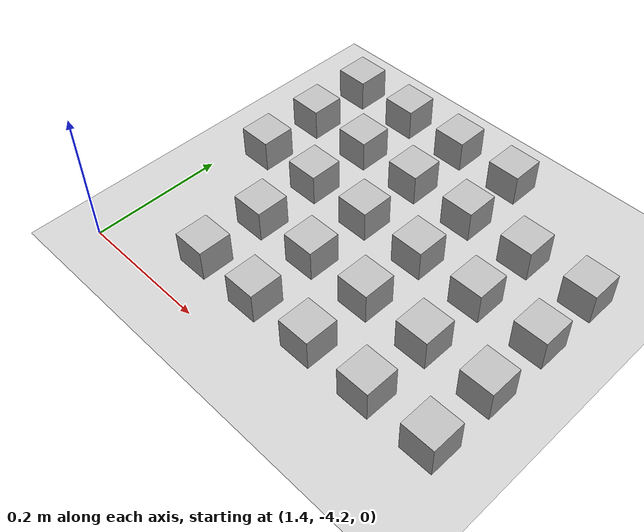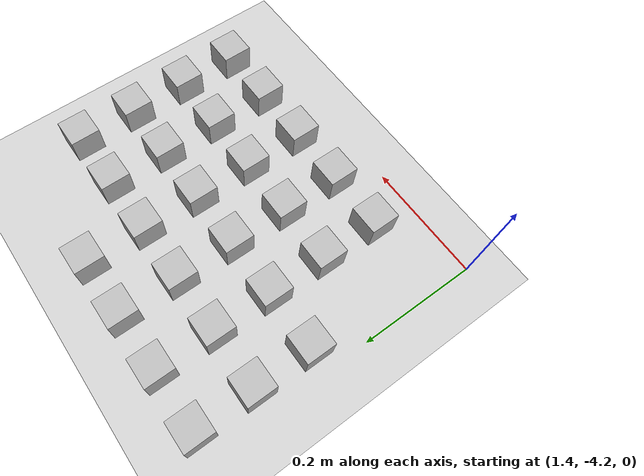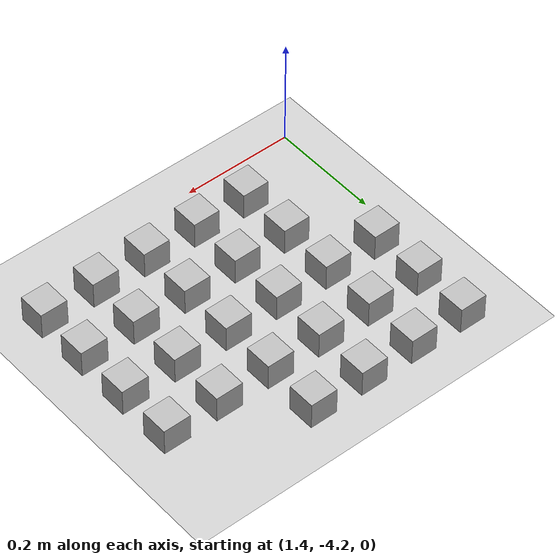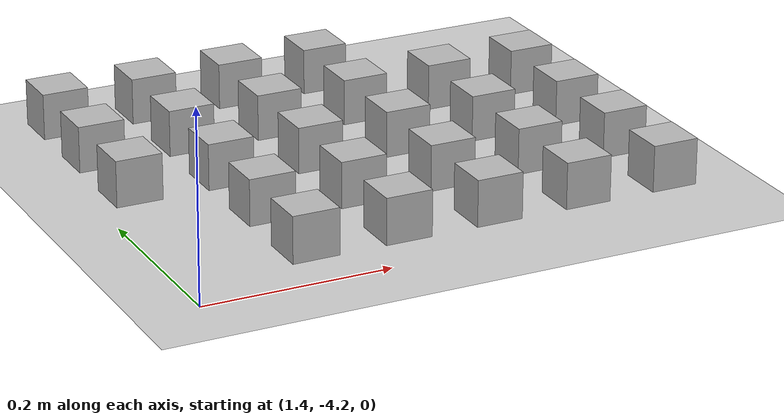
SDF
<sdf version="1.4">
 <world name="default">
  <model name="ground_plane">
   <static>1</static>
   <link name="link">
    <collision name="collision">
     <geometry><plane><normal>0 0 1</normal><size>100 100</size></plane></geometry>
     <surface><friction><ode><mu>100</mu><mu2>50</mu2></ode></friction></surface>
    </collision>
    <visual name="visual">
     <cast_shadows>0</cast_shadows>
     <geometry><plane><normal>0 0 1</normal><size>100 100</size></plane></geometry>
     <material>
      <script><uri>file://media/materials/scripts/gazebo.material</uri><name>Gazebo/Grey</name></script>
     </material>
    </visual>
    <velocity_decay><linear>0</linear><angular>0</angular></velocity_decay>
   </link>
  </model>
  <model name="at195">
   <static>0</static>
   <link name="link">
    <inertial>
     <mass>0.01</mass>
     <inertia><ixx>4e-05</ixx><ixy>0</ixy><ixz>0</ixz><iyy>4e-05</iyy><iyz>0</iyz><izz>4e-05</izz></inertia>
    </inertial>
    <visual name="visual">
     <transparency>0.1</transparency>
     <geometry><box><size>0.05 0.05 0.05</size></box></geometry>
     <material>
      <script>
       <uri>model://at0/materials/scripts</uri>
       <uri>model://at0/materials/textures</uri>
       <name>at0/Diffuse</name>
      </script>
     </material>
    </visual>
    <collision name="collision">
     <geometry><box><size>0.05 0.05 0.05</size></box></geometry>
     <surface><friction><ode><mu>0.8</mu><mu2>0.7</mu2></ode></friction></surface>
    </collision>
    <velocity_decay><linear>0</linear><angular>0</angular></velocity_decay>
   </link>
   <pose>1.54324 -4.12605 0.024993 -2.9e-05 -2.9e-05 1e-06</pose>
  </model>
  <model name="at196">
   <static>0</static>
   <link name="link">
    <inertial>
     <mass>0.01</mass>
     <inertia><ixx>4e-05</ixx><ixy>0</ixy><ixz>0</ixz><iyy>4e-05</iyy><iyz>0</iyz><izz>4e-05</izz></inertia>
    </inertial>
    <visual name="visual">
     <transparency>0.1</transparency>
     <geometry><box><size>0.05 0.05 0.05</size></box></geometry>
     <material>
      <script>
       <uri>model://at0/materials/scripts</uri>
       <uri>model://at0/materials/textures</uri>
       <name>at0/Diffuse</name>
      </script>
     </material>
    </visual>
    <collision name="collision">
     <geometry><box><size>0.05 0.05 0.05</size></box></geometry>
     <surface><friction><ode><mu>0.8</mu><mu2>0.7</mu2></ode></friction></surface>
    </collision>
    <velocity_decay><linear>0</linear><angular>0</angular></velocity_decay>
   </link>
   <pose>1.64324 -4.12605 0.024997 2.9e-05 2.9e-05 1e-06</pose>
  </model>
  <model name="at197">
   <static>0</static>
   <link name="link">
    <inertial>
     <mass>0.01</mass>
     <inertia><ixx>4e-05</ixx><ixy>0</ixy><ixz>0</ixz><iyy>4e-05</iyy><iyz>0</iyz><izz>4e-05</izz></inertia>
    </inertial>
    <visual name="visual">
     <transparency>0.1</transparency>
     <geometry><box><size>0.05 0.05 0.05</size></box></geometry>
     <material>
      <script>
       <uri>model://at0/materials/scripts</uri>
       <uri>model://at0/materials/textures</uri>
       <name>at0/Diffuse</name>
      </script>
     </material>
    </visual>
    <collision name="collision">
     <geometry><box><size>0.05 0.05 0.05</size></box></geometry>
     <surface><friction><ode><mu>0.8</mu><mu2>0.7</mu2></ode></friction></surface>
    </collision>
    <velocity_decay><linear>0</linear><angular>0</angular></velocity_decay>
   </link>
   <pose>1.74324 -4.12605 0.024993 -2.9e-05 -2.9e-05 1e-06</pose>
  </model>
  <model name="at198">
   <static>0</static>
   <link name="link">
    <inertial>
     <mass>0.01</mass>
     <inertia><ixx>4e-05</ixx><ixy>0</ixy><ixz>0</ixz><iyy>4e-05</iyy><iyz>0</iyz><izz>4e-05</izz></inertia>
    </inertial>
    <visual name="visual">
     <transparency>0.1</transparency>
     <geometry><box><size>0.05 0.05 0.05</size></box></geometry>
     <material>
      <script>
       <uri>model://at0/materials/scripts</uri>
       <uri>model://at0/materials/textures</uri>
       <name>at0/Diffuse</name>
      </script>
     </material>
    </visual>
    <collision name="collision">
     <geometry><box><size>0.05 0.05 0.05</size></box></geometry>
     <surface><friction><ode><mu>0.8</mu><mu2>0.7</mu2></ode></friction></surface>
    </collision>
    <velocity_decay><linear>0</linear><angular>0</angular></velocity_decay>
   </link>
   <pose>1.84324 -4.12605 0.024993 -2.9e-05 -2.9e-05 1e-06</pose>
  </model>
  <model name="at199">
   <static>0</static>
   <link name="link">
    <inertial>
     <mass>0.01</mass>
     <inertia><ixx>4e-05</ixx><ixy>0</ixy><ixz>0</ixz><iyy>4e-05</iyy><iyz>0</iyz><izz>4e-05</izz></inertia>
    </inertial>
    <visual name="visual">
     <transparency>0.1</transparency>
     <geometry><box><size>0.05 0.05 0.05</size></box></geometry>
     <material>
      <script>
       <uri>model://at0/materials/scripts</uri>
       <uri>model://at0/materials/textures</uri>
       <name>at0/Diffuse</name>
      </script>
     </material>
    </visual>
    <collision name="collision">
     <geometry><box><size>0.05 0.05 0.05</size></box></geometry>
     <surface><friction><ode><mu>0.8</mu><mu2>0.7</mu2></ode></friction></surface>
    </collision>
    <velocity_decay><linear>0</linear><angular>0</angular></velocity_decay>
   </link>
   <pose>1.94324 -4.12605 0.024997 2.9e-05 2.9e-05 1e-06</pose>
  </model>
  <model name="at203">
   <static>0</static>
   <link name="link">
    <inertial>
     <mass>0.01</mass>
     <inertia><ixx>4e-05</ixx><ixy>0</ixy><ixz>0</ixz><iyy>4e-05</iyy><iyz>0</iyz><izz>4e-05</izz></inertia>
    </inertial>
    <visual name="visual">
     <transparency>0.1</transparency>
     <geometry><box><size>0.05 0.05 0.05</size></box></geometry>
     <material>
      <script>
       <uri>model://at0/materials/scripts</uri>
       <uri>model://at0/materials/textures</uri>
       <name>at0/Diffuse</name>
      </script>
     </material>
    </visual>
    <collision name="collision">
     <geometry><box><size>0.05 0.05 0.05</size></box></geometry>
     <surface><friction><ode><mu>0.8</mu><mu2>0.7</mu2></ode></friction></surface>
    </collision>
    <velocity_decay><linear>0</linear><angular>0</angular></velocity_decay>
   </link>
   <pose>1.54324 -4.02605 0.024993 -2.9e-05 -2.9e-05 1e-06</pose>
  </model>
  <model name="at204">
   <static>0</static>
   <link name="link">
    <inertial>
     <mass>0.01</mass>
     <inertia><ixx>4e-05</ixx><ixy>0</ixy><ixz>0</ixz><iyy>4e-05</iyy><iyz>0</iyz><izz>4e-05</izz></inertia>
    </inertial>
    <visual name="visual">
     <transparency>0.1</transparency>
     <geometry><box><size>0.05 0.05 0.05</size></box></geometry>
     <material>
      <script>
       <uri>model://at0/materials/scripts</uri>
       <uri>model://at0/materials/textures</uri>
       <name>at0/Diffuse</name>
      </script>
     </material>
    </visual>
    <collision name="collision">
     <geometry><box><size>0.05 0.05 0.05</size></box></geometry>
     <surface><friction><ode><mu>0.8</mu><mu2>0.7</mu2></ode></friction></surface>
    </collision>
    <velocity_decay><linear>0</linear><angular>0</angular></velocity_decay>
   </link>
   <pose>1.64324 -4.02605 0.024997 2.9e-05 2.9e-05 1e-06</pose>
  </model>
  <model name="at205">
   <static>0</static>
   <link name="link">
    <inertial>
     <mass>0.01</mass>
     <inertia><ixx>4e-05</ixx><ixy>0</ixy><ixz>0</ixz><iyy>4e-05</iyy><iyz>0</iyz><izz>4e-05</izz></inertia>
    </inertial>
    <visual name="visual">
     <transparency>0.1</transparency>
     <geometry><box><size>0.05 0.05 0.05</size></box></geometry>
     <material>
      <script>
       <uri>model://at0/materials/scripts</uri>
       <uri>model://at0/materials/textures</uri>
       <name>at0/Diffuse</name>
      </script>
     </material>
    </visual>
    <collision name="collision">
     <geometry><box><size>0.05 0.05 0.05</size></box></geometry>
     <surface><friction><ode><mu>0.8</mu><mu2>0.7</mu2></ode></friction></surface>
    </collision>
    <velocity_decay><linear>0</linear><angular>0</angular></velocity_decay>
   </link>
   <pose>1.74324 -4.02605 0.024993 -2.9e-05 -2.9e-05 1e-06</pose>
  </model>
  <model name="at206">
   <static>0</static>
   <link name="link">
    <inertial>
     <mass>0.01</mass>
     <inertia><ixx>4e-05</ixx><ixy>0</ixy><ixz>0</ixz><iyy>4e-05</iyy><iyz>0</iyz><izz>4e-05</izz></inertia>
    </inertial>
    <visual name="visual">
     <transparency>0.1</transparency>
     <geometry><box><size>0.05 0.05 0.05</size></box></geometry>
     <material>
      <script>
       <uri>model://at0/materials/scripts</uri>
       <uri>model://at0/materials/textures</uri>
       <name>at0/Diffuse</name>
      </script>
     </material>
    </visual>
    <collision name="collision">
     <geometry><box><size>0.05 0.05 0.05</size></box></geometry>
     <surface><friction><ode><mu>0.8</mu><mu2>0.7</mu2></ode></friction></surface>
    </collision>
    <velocity_decay><linear>0</linear><angular>0</angular></velocity_decay>
   </link>
   <pose>1.84324 -4.02605 0.024993 -2.9e-05 -2.9e-05 1e-06</pose>
  </model>
  <model name="at207">
   <static>0</static>
   <link name="link">
    <inertial>
     <mass>0.01</mass>
     <inertia><ixx>4e-05</ixx><ixy>0</ixy><ixz>0</ixz><iyy>4e-05</iyy><iyz>0</iyz><izz>4e-05</izz></inertia>
    </inertial>
    <visual name="visual">
     <transparency>0.1</transparency>
     <geometry><box><size>0.05 0.05 0.05</size></box></geometry>
     <material>
      <script>
       <uri>model://at0/materials/scripts</uri>
       <uri>model://at0/materials/textures</uri>
       <name>at0/Diffuse</name>
      </script>
     </material>
    </visual>
    <collision name="collision">
     <geometry><box><size>0.05 0.05 0.05</size></box></geometry>
     <surface><friction><ode><mu>0.8</mu><mu2>0.7</mu2></ode></friction></surface>
    </collision>
    <velocity_decay><linear>0</linear><angular>0</angular></velocity_decay>
   </link>
   <pose>1.94324 -4.02605 0.024997 2.9e-05 2.9e-05 1e-06</pose>
  </model>
  <model name="at210">
   <static>0</static>
   <link name="link">
    <inertial>
     <mass>0.01</mass>
     <inertia><ixx>4e-05</ixx><ixy>0</ixy><ixz>0</ixz><iyy>4e-05</iyy><iyz>0</iyz><izz>4e-05</izz></inertia>
    </inertial>
    <visual name="visual">
     <transparency>0.1</transparency>
     <geometry><box><size>0.05 0.05 0.05</size></box></geometry>
     <material>
      <script>
       <uri>model://at0/materials/scripts</uri>
       <uri>model://at0/materials/textures</uri>
       <name>at0/Diffuse</name>
      </script>
     </material>
    </visual>
    <collision name="collision">
     <geometry><box><size>0.05 0.05 0.05</size></box></geometry>
     <surface><friction><ode><mu>0.8</mu><mu2>0.7</mu2></ode></friction></surface>
    </collision>
    <velocity_decay><linear>0</linear><angular>0</angular></velocity_decay>
   </link>
   <pose>1.44324 -3.92605 0.024993 -2.9e-05 -2.9e-05 1e-06</pose>
  </model>
  <model name="at211">
   <static>0</static>
   <link name="link">
    <inertial>
     <mass>0.01</mass>
     <inertia><ixx>4e-05</ixx><ixy>0</ixy><ixz>0</ixz><iyy>4e-05</iyy><iyz>0</iyz><izz>4e-05</izz></inertia>
    </inertial>
    <visual name="visual">
     <transparency>0.1</transparency>
     <geometry><box><size>0.05 0.05 0.05</size></box></geometry>
     <material>
      <script>
       <uri>model://at0/materials/scripts</uri>
       <uri>model://at0/materials/textures</uri>
       <name>at0/Diffuse</name>
      </script>
     </material>
    </visual>
    <collision name="collision">
     <geometry><box><size>0.05 0.05 0.05</size></box></geometry>
     <surface><friction><ode><mu>0.8</mu><mu2>0.7</mu2></ode></friction></surface>
    </collision>
    <velocity_decay><linear>0</linear><angular>0</angular></velocity_decay>
   </link>
   <pose>1.54324 -3.92605 0.024997 2.9e-05 2.9e-05 1e-06</pose>
  </model>
  <model name="at212">
   <static>0</static>
   <link name="link">
    <inertial>
     <mass>0.01</mass>
     <inertia><ixx>4e-05</ixx><ixy>0</ixy><ixz>0</ixz><iyy>4e-05</iyy><iyz>0</iyz><izz>4e-05</izz></inertia>
    </inertial>
    <visual name="visual">
     <transparency>0.1</transparency>
     <geometry><box><size>0.05 0.05 0.05</size></box></geometry>
     <material>
      <script>
       <uri>model://at0/materials/scripts</uri>
       <uri>model://at0/materials/textures</uri>
       <name>at0/Diffuse</name>
      </script>
     </material>
    </visual>
    <collision name="collision">
     <geometry><box><size>0.05 0.05 0.05</size></box></geometry>
     <surface><friction><ode><mu>0.8</mu><mu2>0.7</mu2></ode></friction></surface>
    </collision>
    <velocity_decay><linear>0</linear><angular>0</angular></velocity_decay>
   </link>
   <pose>1.64324 -3.92605 0.024997 2.9e-05 2.9e-05 1e-06</pose>
  </model>
  <model name="at213">
   <static>0</static>
   <link name="link">
    <inertial>
     <mass>0.01</mass>
     <inertia><ixx>4e-05</ixx><ixy>0</ixy><ixz>0</ixz><iyy>4e-05</iyy><iyz>0</iyz><izz>4e-05</izz></inertia>
    </inertial>
    <visual name="visual">
     <transparency>0.1</transparency>
     <geometry><box><size>0.05 0.05 0.05</size></box></geometry>
     <material>
      <script>
       <uri>model://at0/materials/scripts</uri>
       <uri>model://at0/materials/textures</uri>
       <name>at0/Diffuse</name>
      </script>
     </material>
    </visual>
    <collision name="collision">
     <geometry><box><size>0.05 0.05 0.05</size></box></geometry>
     <surface><friction><ode><mu>0.8</mu><mu2>0.7</mu2></ode></friction></surface>
    </collision>
    <velocity_decay><linear>0</linear><angular>0</angular></velocity_decay>
   </link>
   <pose>1.74324 -3.92605 0.024993 -2.9e-05 -2.9e-05 1e-06</pose>
  </model>
  <model name="at214">
   <static>0</static>
   <link name="link">
    <inertial>
     <mass>0.01</mass>
     <inertia><ixx>4e-05</ixx><ixy>0</ixy><ixz>0</ixz><iyy>4e-05</iyy><iyz>0</iyz><izz>4e-05</izz></inertia>
    </inertial>
    <visual name="visual">
     <transparency>0.1</transparency>
     <geometry><box><size>0.05 0.05 0.05</size></box></geometry>
     <material>
      <script>
       <uri>model://at0/materials/scripts</uri>
       <uri>model://at0/materials/textures</uri>
       <name>at0/Diffuse</name>
      </script>
     </material>
    </visual>
    <collision name="collision">
     <geometry><box><size>0.05 0.05 0.05</size></box></geometry>
     <surface><friction><ode><mu>0.8</mu><mu2>0.7</mu2></ode></friction></surface>
    </collision>
    <velocity_decay><linear>0</linear><angular>0</angular></velocity_decay>
   </link>
   <pose>1.84324 -3.92605 0.024997 2.9e-05 2.9e-05 1e-06</pose>
  </model>
  <model name="at215">
   <static>0</static>
   <link name="link">
    <inertial>
     <mass>0.01</mass>
     <inertia><ixx>4e-05</ixx><ixy>0</ixy><ixz>0</ixz><iyy>4e-05</iyy><iyz>0</iyz><izz>4e-05</izz></inertia>
    </inertial>
    <visual name="visual">
     <transparency>0.1</transparency>
     <geometry><box><size>0.05 0.05 0.05</size></box></geometry>
     <material>
      <script>
       <uri>model://at0/materials/scripts</uri>
       <uri>model://at0/materials/textures</uri>
       <name>at0/Diffuse</name>
      </script>
     </material>
    </visual>
    <collision name="collision">
     <geometry><box><size>0.05 0.05 0.05</size></box></geometry>
     <surface><friction><ode><mu>0.8</mu><mu2>0.7</mu2></ode></friction></surface>
    </collision>
    <velocity_decay><linear>0</linear><angular>0</angular></velocity_decay>
   </link>
   <pose>1.94324 -3.92605 0.024993 -2.9e-05 -2.9e-05 1e-06</pose>
  </model>
  <model name="at218">
   <static>0</static>
   <link name="link">
    <inertial>
     <mass>0.01</mass>
     <inertia><ixx>4e-05</ixx><ixy>0</ixy><ixz>0</ixz><iyy>4e-05</iyy><iyz>0</iyz><izz>4e-05</izz></inertia>
    </inertial>
    <visual name="visual">
     <transparency>0.1</transparency>
     <geometry><box><size>0.05 0.05 0.05</size></box></geometry>
     <material>
      <script>
       <uri>model://at0/materials/scripts</uri>
       <uri>model://at0/materials/textures</uri>
       <name>at0/Diffuse</name>
      </script>
     </material>
    </visual>
    <collision name="collision">
     <geometry><box><size>0.05 0.05 0.05</size></box></geometry>
     <surface><friction><ode><mu>0.8</mu><mu2>0.7</mu2></ode></friction></surface>
    </collision>
    <velocity_decay><linear>0</linear><angular>0</angular></velocity_decay>
   </link>
   <pose>1.44324 -3.82605 0.024997 2.9e-05 2.9e-05 1e-06</pose>
  </model>
  <model name="at219">
   <static>0</static>
   <link name="link">
    <inertial>
     <mass>0.01</mass>
     <inertia><ixx>4e-05</ixx><ixy>0</ixy><ixz>0</ixz><iyy>4e-05</iyy><iyz>0</iyz><izz>4e-05</izz></inertia>
    </inertial>
    <visual name="visual">
     <transparency>0.1</transparency>
     <geometry><box><size>0.05 0.05 0.05</size></box></geometry>
     <material>
      <script>
       <uri>model://at0/materials/scripts</uri>
       <uri>model://at0/materials/textures</uri>
       <name>at0/Diffuse</name>
      </script>
     </material>
    </visual>
    <collision name="collision">
     <geometry><box><size>0.05 0.05 0.05</size></box></geometry>
     <surface><friction><ode><mu>0.8</mu><mu2>0.7</mu2></ode></friction></surface>
    </collision>
    <velocity_decay><linear>0</linear><angular>0</angular></velocity_decay>
   </link>
   <pose>1.54324 -3.82605 0.024997 2.9e-05 2.9e-05 1e-06</pose>
  </model>
  <model name="at220">
   <static>0</static>
   <link name="link">
    <inertial>
     <mass>0.01</mass>
     <inertia><ixx>4e-05</ixx><ixy>0</ixy><ixz>0</ixz><iyy>4e-05</iyy><iyz>0</iyz><izz>4e-05</izz></inertia>
    </inertial>
    <visual name="visual">
     <transparency>0.1</transparency>
     <geometry><box><size>0.05 0.05 0.05</size></box></geometry>
     <material>
      <script>
       <uri>model://at0/materials/scripts</uri>
       <uri>model://at0/materials/textures</uri>
       <name>at0/Diffuse</name>
      </script>
     </material>
    </visual>
    <collision name="collision">
     <geometry><box><size>0.05 0.05 0.05</size></box></geometry>
     <surface><friction><ode><mu>0.8</mu><mu2>0.7</mu2></ode></friction></surface>
    </collision>
    <velocity_decay><linear>0</linear><angular>0</angular></velocity_decay>
   </link>
   <pose>1.64324 -3.82605 0.024997 2.9e-05 2.9e-05 1e-06</pose>
  </model>
  <model name="at221">
   <static>0</static>
   <link name="link">
    <inertial>
     <mass>0.01</mass>
     <inertia><ixx>4e-05</ixx><ixy>0</ixy><ixz>0</ixz><iyy>4e-05</iyy><iyz>0</iyz><izz>4e-05</izz></inertia>
    </inertial>
    <visual name="visual">
     <transparency>0.1</transparency>
     <geometry><box><size>0.05 0.05 0.05</size></box></geometry>
     <material>
      <script>
       <uri>model://at0/materials/scripts</uri>
       <uri>model://at0/materials/textures</uri>
       <name>at0/Diffuse</name>
      </script>
     </material>
    </visual>
    <collision name="collision">
     <geometry><box><size>0.05 0.05 0.05</size></box></geometry>
     <surface><friction><ode><mu>0.8</mu><mu2>0.7</mu2></ode></friction></surface>
    </collision>
    <velocity_decay><linear>0</linear><angular>0</angular></velocity_decay>
   </link>
   <pose>1.74324 -3.82605 0.024997 2.9e-05 2.9e-05 1e-06</pose>
  </model>
  <model name="at222">
   <static>0</static>
   <link name="link">
    <inertial>
     <mass>0.01</mass>
     <inertia><ixx>4e-05</ixx><ixy>0</ixy><ixz>0</ixz><iyy>4e-05</iyy><iyz>0</iyz><izz>4e-05</izz></inertia>
    </inertial>
    <visual name="visual">
     <transparency>0.1</transparency>
     <geometry><box><size>0.05 0.05 0.05</size></box></geometry>
     <material>
      <script>
       <uri>model://at0/materials/scripts</uri>
       <uri>model://at0/materials/textures</uri>
       <name>at0/Diffuse</name>
      </script>
     </material>
    </visual>
    <collision name="collision">
     <geometry><box><size>0.05 0.05 0.05</size></box></geometry>
     <surface><friction><ode><mu>0.8</mu><mu2>0.7</mu2></ode></friction></surface>
    </collision>
    <velocity_decay><linear>0</linear><angular>0</angular></velocity_decay>
   </link>
   <pose>1.84324 -3.82605 0.024997 2.9e-05 2.9e-05 1e-06</pose>
  </model>
  <model name="at223">
   <static>0</static>
   <link name="link">
    <inertial>
     <mass>0.01</mass>
     <inertia><ixx>4e-05</ixx><ixy>0</ixy><ixz>0</ixz><iyy>4e-05</iyy><iyz>0</iyz><izz>4e-05</izz></inertia>
    </inertial>
    <visual name="visual">
     <transparency>0.1</transparency>
     <geometry><box><size>0.05 0.05 0.05</size></box></geometry>
     <material>
      <script>
       <uri>model://at0/materials/scripts</uri>
       <uri>model://at0/materials/textures</uri>
       <name>at0/Diffuse</name>
      </script>
     </material>
    </visual>
    <collision name="collision">
     <geometry><box><size>0.05 0.05 0.05</size></box></geometry>
     <surface><friction><ode><mu>0.8</mu><mu2>0.7</mu2></ode></friction></surface>
    </collision>
    <velocity_decay><linear>0</linear><angular>0</angular></velocity_decay>
   </link>
   <pose>1.94324 -3.82605 0.024997 2.9e-05 2.9e-05 1e-06</pose>
  </model>
  <model name="at226">
   <static>0</static>
   <link name="link">
    <inertial>
     <mass>0.01</mass>
     <inertia><ixx>4e-05</ixx><ixy>0</ixy><ixz>0</ixz><iyy>4e-05</iyy><iyz>0</iyz><izz>4e-05</izz></inertia>
    </inertial>
    <visual name="visual">
     <transparency>0.1</transparency>
     <geometry><box><size>0.05 0.05 0.05</size></box></geometry>
     <material>
      <script>
       <uri>model://at0/materials/scripts</uri>
       <uri>model://at0/materials/textures</uri>
       <name>at0/Diffuse</name>
      </script>
     </material>
    </visual>
    <collision name="collision">
     <geometry><box><size>0.05 0.05 0.05</size></box></geometry>
     <surface><friction><ode><mu>0.8</mu><mu2>0.7</mu2></ode></friction></surface>
    </collision>
    <velocity_decay><linear>0</linear><angular>0</angular></velocity_decay>
   </link>
   <pose>1.44324 -3.72605 0.024993 -2.9e-05 -2.9e-05 1e-06</pose>
  </model>
  <model name="at227">
   <static>0</static>
   <link name="link">
    <inertial>
     <mass>0.01</mass>
     <inertia><ixx>4e-05</ixx><ixy>0</ixy><ixz>0</ixz><iyy>4e-05</iyy><iyz>0</iyz><izz>4e-05</izz></inertia>
    </inertial>
    <visual name="visual">
     <transparency>0.1</transparency>
     <geometry><box><size>0.05 0.05 0.05</size></box></geometry>
     <material>
      <script>
       <uri>model://at0/materials/scripts</uri>
       <uri>model://at0/materials/textures</uri>
       <name>at0/Diffuse</name>
      </script>
     </material>
    </visual>
    <collision name="collision">
     <geometry><box><size>0.05 0.05 0.05</size></box></geometry>
     <surface><friction><ode><mu>0.8</mu><mu2>0.7</mu2></ode></friction></surface>
    </collision>
    <velocity_decay><linear>0</linear><angular>0</angular></velocity_decay>
   </link>
   <pose>1.54324 -3.72605 0.024993 -2.9e-05 -2.9e-05 1e-06</pose>
  </model>
  <model name="at228">
   <static>0</static>
   <link name="link">
    <inertial>
     <mass>0.01</mass>
     <inertia><ixx>4e-05</ixx><ixy>0</ixy><ixz>0</ixz><iyy>4e-05</iyy><iyz>0</iyz><izz>4e-05</izz></inertia>
    </inertial>
    <visual name="visual">
     <transparency>0.1</transparency>
     <geometry><box><size>0.05 0.05 0.05</size></box></geometry>
     <material>
      <script>
       <uri>model://at0/materials/scripts</uri>
       <uri>model://at0/materials/textures</uri>
       <name>at0/Diffuse</name>
      </script>
     </material>
    </visual>
    <collision name="collision">
     <geometry><box><size>0.05 0.05 0.05</size></box></geometry>
     <surface><friction><ode><mu>0.8</mu><mu2>0.7</mu2></ode></friction></surface>
    </collision>
    <velocity_decay><linear>0</linear><angular>0</angular></velocity_decay>
   </link>
   <pose>1.64324 -3.72605 0.024997 2.9e-05 2.9e-05 1e-06</pose>
  </model>
  <model name="at229">
   <static>0</static>
   <link name="link">
    <inertial>
     <mass>0.01</mass>
     <inertia><ixx>4e-05</ixx><ixy>0</ixy><ixz>0</ixz><iyy>4e-05</iyy><iyz>0</iyz><izz>4e-05</izz></inertia>
    </inertial>
    <visual name="visual">
     <transparency>0.1</transparency>
     <geometry><box><size>0.05 0.05 0.05</size></box></geometry>
     <material>
      <script>
       <uri>model://at0/materials/scripts</uri>
       <uri>model://at0/materials/textures</uri>
       <name>at0/Diffuse</name>
      </script>
     </material>
    </visual>
    <collision name="collision">
     <geometry><box><size>0.05 0.05 0.05</size></box></geometry>
     <surface><friction><ode><mu>0.8</mu><mu2>0.7</mu2></ode></friction></surface>
    </collision>
    <velocity_decay><linear>0</linear><angular>0</angular></velocity_decay>
   </link>
   <pose>1.74324 -3.72605 0.024997 2.9e-05 2.9e-05 1e-06</pose>
  </model>
 </world>
</sdf>
